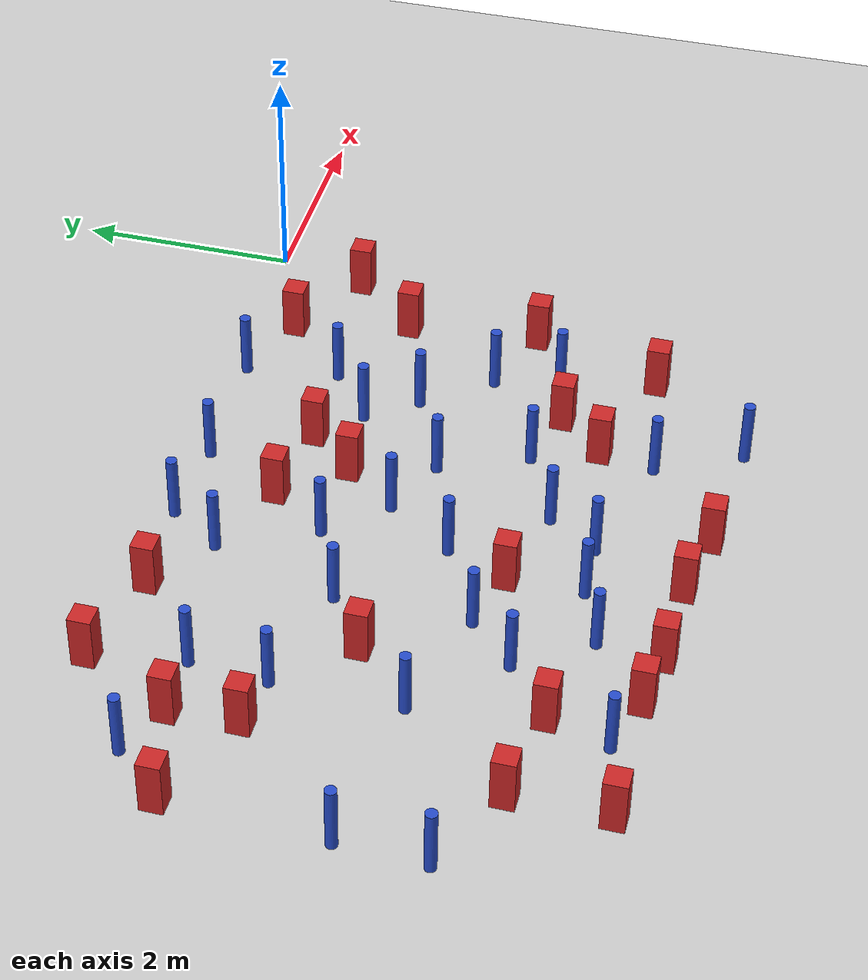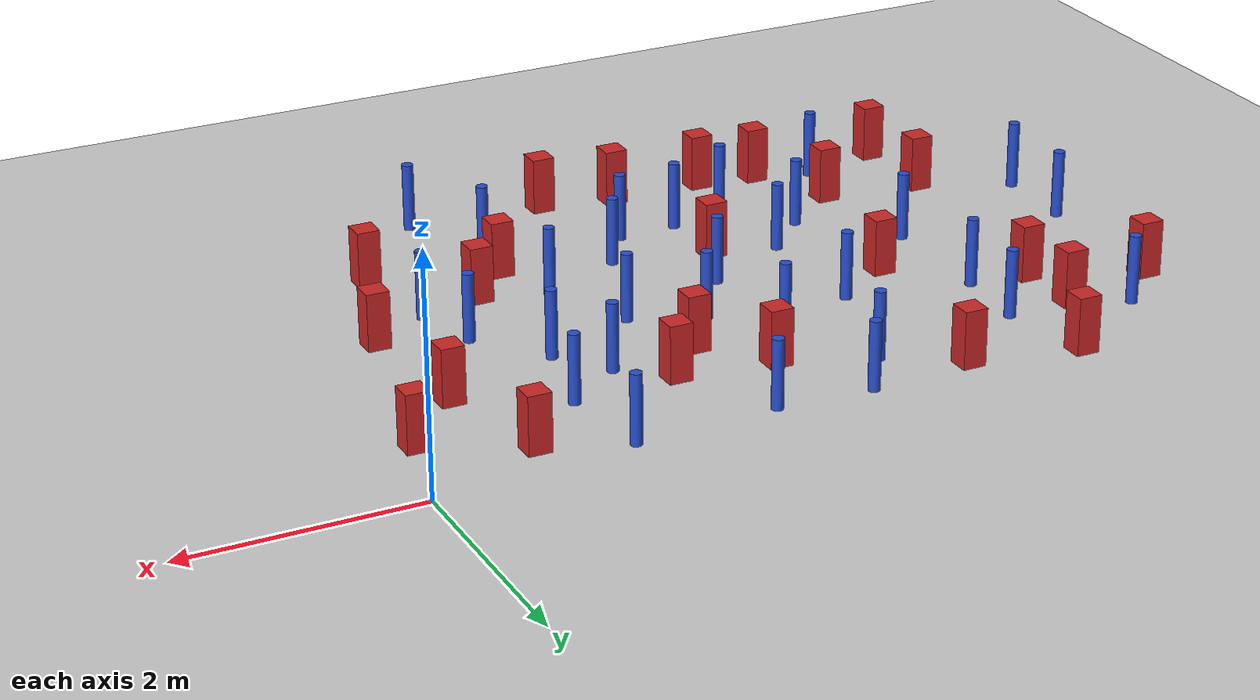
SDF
<sdf version="1.6">
 <world name="default">
  <model name="ground_plane">
   <static>1</static>
   <link name="link">
    <collision name="collision">
     <geometry><plane><normal>0 0 1</normal><size>100 100</size></plane></geometry>
     <surface><friction><ode><mu>100</mu><mu2>50</mu2></ode></friction></surface>
    </collision>
    <visual name="visual">
     <cast_shadows>0</cast_shadows>
     <geometry><plane><normal>0 0 1</normal><size>100 100</size></plane></geometry>
     <material>
      <ambient>1.0 1.0 1.0 1.0</ambient>
      <diffuse>0.8 0.8 0.8 1.0</diffuse>
      <specular>0.01 0.01 0.01 1.000000</specular>
     </material>
    </visual>
   </link>
  </model>
  <model name="pole_obstacle0">
   <static>true</static>
   <pose>-2.11053961955 -1.37780784894 7.38925637345e-09 -8.471706928e-08 1.24976765152e-08 -1.74513093012e-07</pose>
   <link name="link">
    <pose>0 0 0.3 0 -0 0</pose>
    <inertial>
     <mass>1</mass>
     <inertia><ixx>0.145833</ixx><ixy>0</ixy><ixz>0</ixz><iyy>0.145833</iyy><iyz>0</iyz><izz>0.125</izz></inertia>
    </inertial>
    <collision name="collision">
     <geometry><cylinder><radius>0.05</radius><length>.6</length></cylinder></geometry>
    </collision>
    <visual name="visual">
     <geometry><cylinder><radius>0.05</radius><length>.6</length></cylinder></geometry>
     <material>
      <script><name>Gazebo/Blue</name><uri>file://media/materials/scripts/gazebo.material</uri></script>
     </material>
    </visual>
   </link>
  </model>
  <model name="pole_obstacle1">
   <static>true</static>
   <pose>-3.68166964586 -1.43616901188 7.38925637345e-09 -8.471706928e-08 1.24976765152e-08 -1.74513093012e-07</pose>
   <link name="link">
    <pose>0 0 0.3 0 -0 0</pose>
    <inertial>
     <mass>1</mass>
     <inertia><ixx>0.145833</ixx><ixy>0</ixy><ixz>0</ixz><iyy>0.145833</iyy><iyz>0</iyz><izz>0.125</izz></inertia>
    </inertial>
    <collision name="collision">
     <geometry><cylinder><radius>0.05</radius><length>.6</length></cylinder></geometry>
    </collision>
    <visual name="visual">
     <geometry><cylinder><radius>0.05</radius><length>.6</length></cylinder></geometry>
     <material>
      <script><name>Gazebo/Blue</name><uri>file://media/materials/scripts/gazebo.material</uri></script>
     </material>
    </visual>
   </link>
  </model>
  <model name="square_post_obstacle18">
   <static>true</static>
   <pose>-1.00852679622 -3.84556758201 1.91545236811e-07 -7.35059704564e-06 1.12565212e-07 2.39332434364e-05</pose>
   <link name="link">
    <pose>0 0 0.25 0 -0 0</pose>
    <inertial>
     <mass>100</mass>
     <inertia>
      <ixx>0.166667</ixx>
      <ixy>0</ixy>
      <ixz>0</ixz>
      <iyy>0.166667</iyy>
      <iyz>0</iyz>
      <izz>0.166667</izz>
     </inertia>
    </inertial>
    <collision name="collision"><geometry><box><size>.2 .2 .5</size></box></geometry></collision>
    <visual name="visual">
     <geometry><box><size>.2 .2 .5</size></box></geometry>
     <material>
      <script><name>Gazebo/Red</name><uri>file://media/materials/scripts/gazebo.material</uri></script>
     </material>
    </visual>
   </link>
  </model>
  <model name="pole_obstacle25">
   <static>true</static>
   <pose>-2.28823103173 -2.95476217556 7.38925637345e-09 -8.47170692798e-08 1.24976764939e-08 -1.74513093025e-07</pose>
   <link name="link">
    <pose>0 0 0.3 0 -0 0</pose>
    <inertial>
     <mass>1</mass>
     <inertia><ixx>0.145833</ixx><ixy>0</ixy><ixz>0</ixz><iyy>0.145833</iyy><iyz>0</iyz><izz>0.125</izz></inertia>
    </inertial>
    <collision name="collision">
     <geometry><cylinder><radius>0.05</radius><length>.6</length></cylinder></geometry>
    </collision>
    <visual name="visual">
     <geometry><cylinder><radius>0.05</radius><length>.6</length></cylinder></geometry>
     <material>
      <script><name>Gazebo/Blue</name><uri>file://media/materials/scripts/gazebo.material</uri></script>
     </material>
    </visual>
   </link>
  </model>
  <model name="pole_obstacle26">
   <static>true</static>
   <pose>-3.63278469626 -2.53718502905 7.38925637345e-09 -8.471706928e-08 1.24976765098e-08 -1.74513093016e-07</pose>
   <link name="link">
    <pose>0 0 0.3 0 -0 0</pose>
    <inertial>
     <mass>1</mass>
     <inertia><ixx>0.145833</ixx><ixy>0</ixy><ixz>0</ixz><iyy>0.145833</iyy><iyz>0</iyz><izz>0.125</izz></inertia>
    </inertial>
    <collision name="collision">
     <geometry><cylinder><radius>0.05</radius><length>.6</length></cylinder></geometry>
    </collision>
    <visual name="visual">
     <geometry><cylinder><radius>0.05</radius><length>.6</length></cylinder></geometry>
     <material>
      <script><name>Gazebo/Blue</name><uri>file://media/materials/scripts/gazebo.material</uri></script>
     </material>
    </visual>
   </link>
  </model>
  <model name="pole_obstacle30">
   <static>true</static>
   <pose>-5.50101128781 -1.53188321472 7.38925637345e-09 -8.471706928e-08 1.24976765134e-08 -1.74513093015e-07</pose>
   <link name="link">
    <pose>0 0 0.3 0 -0 0</pose>
    <inertial>
     <mass>1</mass>
     <inertia><ixx>0.145833</ixx><ixy>0</ixy><ixz>0</ixz><iyy>0.145833</iyy><iyz>0</iyz><izz>0.125</izz></inertia>
    </inertial>
    <collision name="collision">
     <geometry><cylinder><radius>0.05</radius><length>.6</length></cylinder></geometry>
    </collision>
    <visual name="visual">
     <geometry><cylinder><radius>0.05</radius><length>.6</length></cylinder></geometry>
     <material>
      <script><name>Gazebo/Blue</name><uri>file://media/materials/scripts/gazebo.material</uri></script>
     </material>
    </visual>
   </link>
  </model>
  <model name="pole_obstacle33">
   <static>true</static>
   <pose>-4.43601689761 -1.76488149253 7.38925637345e-09 -8.471706928e-08 1.24976765134e-08 -1.74513093015e-07</pose>
   <link name="link">
    <pose>0 0 0.3 0 -0 0</pose>
    <inertial>
     <mass>1</mass>
     <inertia><ixx>0.145833</ixx><ixy>0</ixy><ixz>0</ixz><iyy>0.145833</iyy><iyz>0</iyz><izz>0.125</izz></inertia>
    </inertial>
    <collision name="collision">
     <geometry><cylinder><radius>0.05</radius><length>.6</length></cylinder></geometry>
    </collision>
    <visual name="visual">
     <geometry><cylinder><radius>0.05</radius><length>.6</length></cylinder></geometry>
     <material>
      <script><name>Gazebo/Blue</name><uri>file://media/materials/scripts/gazebo.material</uri></script>
     </material>
    </visual>
   </link>
  </model>
  <model name="pole_obstacle35">
   <static>true</static>
   <pose>-1.6002046586 -0.995579997424 7.38925637345e-09 -8.47170692798e-08 1.24976765028e-08 -1.74513093019e-07</pose>
   <link name="link">
    <pose>0 0 0.3 0 -0 0</pose>
    <inertial>
     <mass>1</mass>
     <inertia><ixx>0.145833</ixx><ixy>0</ixy><ixz>0</ixz><iyy>0.145833</iyy><iyz>0</iyz><izz>0.125</izz></inertia>
    </inertial>
    <collision name="collision">
     <geometry><cylinder><radius>0.05</radius><length>.6</length></cylinder></geometry>
    </collision>
    <visual name="visual">
     <geometry><cylinder><radius>0.05</radius><length>.6</length></cylinder></geometry>
     <material>
      <script><name>Gazebo/Blue</name><uri>file://media/materials/scripts/gazebo.material</uri></script>
     </material>
    </visual>
   </link>
  </model>
  <model name="square_post_obstacle36">
   <static>true</static>
   <pose>-5.33904964948 -3.74923108384 1.91545236811e-07 -7.35059704564e-06 1.12565212e-07 2.39332434364e-05</pose>
   <link name="link">
    <pose>0 0 0.25 0 -0 0</pose>
    <inertial>
     <mass>100</mass>
     <inertia>
      <ixx>0.166667</ixx>
      <ixy>0</ixy>
      <ixz>0</ixz>
      <iyy>0.166667</iyy>
      <iyz>0</iyz>
      <izz>0.166667</izz>
     </inertia>
    </inertial>
    <collision name="collision"><geometry><box><size>.2 .2 .5</size></box></geometry></collision>
    <visual name="visual">
     <geometry><box><size>.2 .2 .5</size></box></geometry>
     <material>
      <script><name>Gazebo/Red</name><uri>file://media/materials/scripts/gazebo.material</uri></script>
     </material>
    </visual>
   </link>
  </model>
  <model name="pole_obstacle52">
   <static>true</static>
   <pose>-3.84491228498 -3.75736233636 7.38925637345e-09 -8.471706928e-08 1.24976765098e-08 -1.74513093016e-07</pose>
   <link name="link">
    <pose>0 0 0.3 0 -0 0</pose>
    <inertial>
     <mass>1</mass>
     <inertia><ixx>0.145833</ixx><ixy>0</ixy><ixz>0</ixz><iyy>0.145833</iyy><iyz>0</iyz><izz>0.125</izz></inertia>
    </inertial>
    <collision name="collision">
     <geometry><cylinder><radius>0.05</radius><length>.6</length></cylinder></geometry>
    </collision>
    <visual name="visual">
     <geometry><cylinder><radius>0.05</radius><length>.6</length></cylinder></geometry>
     <material>
      <script><name>Gazebo/Blue</name><uri>file://media/materials/scripts/gazebo.material</uri></script>
     </material>
    </visual>
   </link>
  </model>
  <model name="square_post_obstacle42">
   <static>true</static>
   <pose>-2.97548360658 -4.66591913306 1.91545236811e-07 -7.35059704564e-06 1.12565212e-07 2.39332434364e-05</pose>
   <link name="link">
    <pose>0 0 0.25 0 -0 0</pose>
    <inertial>
     <mass>100</mass>
     <inertia>
      <ixx>0.166667</ixx>
      <ixy>0</ixy>
      <ixz>0</ixz>
      <iyy>0.166667</iyy>
      <iyz>0</iyz>
      <izz>0.166667</izz>
     </inertia>
    </inertial>
    <collision name="collision"><geometry><box><size>.2 .2 .5</size></box></geometry></collision>
    <visual name="visual">
     <geometry><box><size>.2 .2 .5</size></box></geometry>
     <material>
      <script><name>Gazebo/Red</name><uri>file://media/materials/scripts/gazebo.material</uri></script>
     </material>
    </visual>
   </link>
  </model>
  <model name="pole_obstacle56">
   <static>true</static>
   <pose>-6.5002849731 -0.632161843018 7.38925637345e-09 -8.47170692799e-08 1.24976765038e-08 -1.74513093018e-07</pose>
   <link name="link">
    <pose>0 0 0.3 0 -0 0</pose>
    <inertial>
     <mass>1</mass>
     <inertia><ixx>0.145833</ixx><ixy>0</ixy><ixz>0</ixz><iyy>0.145833</iyy><iyz>0</iyz><izz>0.125</izz></inertia>
    </inertial>
    <collision name="collision">
     <geometry><cylinder><radius>0.05</radius><length>.6</length></cylinder></geometry>
    </collision>
    <visual name="visual">
     <geometry><cylinder><radius>0.05</radius><length>.6</length></cylinder></geometry>
     <material>
      <script><name>Gazebo/Blue</name><uri>file://media/materials/scripts/gazebo.material</uri></script>
     </material>
    </visual>
   </link>
  </model>
  <model name="pole_obstacle62">
   <static>true</static>
   <pose>-4.08606550317 -0.620463452825 7.38925637345e-09 -8.47170692799e-08 1.24976765038e-08 -1.74513093018e-07</pose>
   <link name="link">
    <pose>0 0 0.3 0 -0 0</pose>
    <inertial>
     <mass>1</mass>
     <inertia><ixx>0.145833</ixx><ixy>0</ixy><ixz>0</ixz><iyy>0.145833</iyy><iyz>0</iyz><izz>0.125</izz></inertia>
    </inertial>
    <collision name="collision">
     <geometry><cylinder><radius>0.05</radius><length>.6</length></cylinder></geometry>
    </collision>
    <visual name="visual">
     <geometry><cylinder><radius>0.05</radius><length>.6</length></cylinder></geometry>
     <material>
      <script><name>Gazebo/Blue</name><uri>file://media/materials/scripts/gazebo.material</uri></script>
     </material>
    </visual>
   </link>
  </model>
  <model name="square_post_obstacle54">
   <static>true</static>
   <pose>-3.62690415859 -4.54605625471 1.91545236811e-07 -7.35059704564e-06 1.12565212e-07 2.39332434364e-05</pose>
   <link name="link">
    <pose>0 0 0.25 0 -0 0</pose>
    <inertial>
     <mass>100</mass>
     <inertia>
      <ixx>0.166667</ixx>
      <ixy>0</ixy>
      <ixz>0</ixz>
      <iyy>0.166667</iyy>
      <iyz>0</iyz>
      <izz>0.166667</izz>
     </inertia>
    </inertial>
    <collision name="collision"><geometry><box><size>.2 .2 .5</size></box></geometry></collision>
    <visual name="visual">
     <geometry><box><size>.2 .2 .5</size></box></geometry>
     <material>
      <script><name>Gazebo/Red</name><uri>file://media/materials/scripts/gazebo.material</uri></script>
     </material>
    </visual>
   </link>
  </model>
  <model name="square_post_obstacle56">
   <static>true</static>
   <pose>-2.49520550602 -1.03942213132 1.91545236811e-07 -7.35059704564e-06 1.12565212e-07 2.39332434364e-05</pose>
   <link name="link">
    <pose>0 0 0.25 0 -0 0</pose>
    <inertial>
     <mass>100</mass>
     <inertia>
      <ixx>0.166667</ixx>
      <ixy>0</ixy>
      <ixz>0</ixz>
      <iyy>0.166667</iyy>
      <iyz>0</iyz>
      <izz>0.166667</izz>
     </inertia>
    </inertial>
    <collision name="collision"><geometry><box><size>.2 .2 .5</size></box></geometry></collision>
    <visual name="visual">
     <geometry><box><size>.2 .2 .5</size></box></geometry>
     <material>
      <script><name>Gazebo/Red</name><uri>file://media/materials/scripts/gazebo.material</uri></script>
     </material>
    </visual>
   </link>
  </model>
  <model name="pole_obstacle76">
   <static>true</static>
   <pose>-2.15423952019 -4.02640002445 7.38925637345e-09 -8.47170692799e-08 1.24976764995e-08 -1.74513093021e-07</pose>
   <link name="link">
    <pose>0 0 0.3 0 -0 0</pose>
    <inertial>
     <mass>1</mass>
     <inertia><ixx>0.145833</ixx><ixy>0</ixy><ixz>0</ixz><iyy>0.145833</iyy><iyz>0</iyz><izz>0.125</izz></inertia>
    </inertial>
    <collision name="collision">
     <geometry><cylinder><radius>0.05</radius><length>.6</length></cylinder></geometry>
    </collision>
    <visual name="visual">
     <geometry><cylinder><radius>0.05</radius><length>.6</length></cylinder></geometry>
     <material>
      <script><name>Gazebo/Blue</name><uri>file://media/materials/scripts/gazebo.material</uri></script>
     </material>
    </visual>
   </link>
  </model>
  <model name="square_post_obstacle66">
   <static>true</static>
   <pose>-1.00684016252 -0.417327412222 1.91545236811e-07 -7.35059704564e-06 1.12565212e-07 2.39332434364e-05</pose>
   <link name="link">
    <pose>0 0 0.25 0 -0 0</pose>
    <inertial>
     <mass>100</mass>
     <inertia>
      <ixx>0.166667</ixx>
      <ixy>0</ixy>
      <ixz>0</ixz>
      <iyy>0.166667</iyy>
      <iyz>0</iyz>
      <izz>0.166667</izz>
     </inertia>
    </inertial>
    <collision name="collision"><geometry><box><size>.2 .2 .5</size></box></geometry></collision>
    <visual name="visual">
     <geometry><box><size>.2 .2 .5</size></box></geometry>
     <material>
      <script><name>Gazebo/Red</name><uri>file://media/materials/scripts/gazebo.material</uri></script>
     </material>
    </visual>
   </link>
  </model>
  <model name="pole_obstacle80">
   <static>true</static>
   <pose>-1.15797878664 -2.97850581812 7.38925637345e-09 -8.47170692799e-08 1.24976765053e-08 -1.74513093017e-07</pose>
   <link name="link">
    <pose>0 0 0.3 0 -0 0</pose>
    <inertial>
     <mass>1</mass>
     <inertia><ixx>0.145833</ixx><ixy>0</ixy><ixz>0</ixz><iyy>0.145833</iyy><iyz>0</iyz><izz>0.125</izz></inertia>
    </inertial>
    <collision name="collision">
     <geometry><cylinder><radius>0.05</radius><length>.6</length></cylinder></geometry>
    </collision>
    <visual name="visual">
     <geometry><cylinder><radius>0.05</radius><length>.6</length></cylinder></geometry>
     <material>
      <script><name>Gazebo/Blue</name><uri>file://media/materials/scripts/gazebo.material</uri></script>
     </material>
    </visual>
   </link>
  </model>
  <model name="square_post_obstacle71">
   <static>true</static>
   <pose>-3.86694732276 -3.09197322422 1.91545236811e-07 -7.35059704564e-06 1.12565212e-07 2.39332434364e-05</pose>
   <link name="link">
    <pose>0 0 0.25 0 -0 0</pose>
    <inertial>
     <mass>100</mass>
     <inertia>
      <ixx>0.166667</ixx>
      <ixy>0</ixy>
      <ixz>0</ixz>
      <iyy>0.166667</iyy>
      <iyz>0</iyz>
      <izz>0.166667</izz>
     </inertia>
    </inertial>
    <collision name="collision"><geometry><box><size>.2 .2 .5</size></box></geometry></collision>
    <visual name="visual">
     <geometry><box><size>.2 .2 .5</size></box></geometry>
     <material>
      <script><name>Gazebo/Red</name><uri>file://media/materials/scripts/gazebo.material</uri></script>
     </material>
    </visual>
   </link>
  </model>
  <model name="square_post_obstacle81">
   <static>true</static>
   <pose>-4.67785933307 -0.232144339004 1.91545236811e-07 -7.35059704564e-06 1.12565212e-07 2.39332434364e-05</pose>
   <link name="link">
    <pose>0 0 0.25 0 -0 0</pose>
    <inertial>
     <mass>100</mass>
     <inertia>
      <ixx>0.166667</ixx>
      <ixy>0</ixy>
      <ixz>0</ixz>
      <iyy>0.166667</iyy>
      <iyz>0</iyz>
      <izz>0.166667</izz>
     </inertia>
    </inertial>
    <collision name="collision"><geometry><box><size>.2 .2 .5</size></box></geometry></collision>
    <visual name="visual">
     <geometry><box><size>.2 .2 .5</size></box></geometry>
     <material>
      <script><name>Gazebo/Red</name><uri>file://media/materials/scripts/gazebo.material</uri></script>
     </material>
    </visual>
   </link>
  </model>
  <model name="pole_obstacle92">
   <static>true</static>
   <pose>-5.4841820577 -4.2934463244 7.38925637345e-09 -8.47170692796e-08 1.24976764786e-08 -1.74513093032e-07</pose>
   <link name="link">
    <pose>0 0 0.3 0 -0 0</pose>
    <inertial>
     <mass>1</mass>
     <inertia><ixx>0.145833</ixx><ixy>0</ixy><ixz>0</ixz><iyy>0.145833</iyy><iyz>0</iyz><izz>0.125</izz></inertia>
    </inertial>
    <collision name="collision">
     <geometry><cylinder><radius>0.05</radius><length>.6</length></cylinder></geometry>
    </collision>
    <visual name="visual">
     <geometry><cylinder><radius>0.05</radius><length>.6</length></cylinder></geometry>
     <material>
      <script><name>Gazebo/Blue</name><uri>file://media/materials/scripts/gazebo.material</uri></script>
     </material>
    </visual>
   </link>
  </model>
  <model name="pole_obstacle97">
   <static>true</static>
   <pose>-5.45050507622 -0.842119013594 7.38925637345e-09 -8.47170692799e-08 1.24976765038e-08 -1.74513093018e-07</pose>
   <link name="link">
    <pose>0 0 0.3 0 -0 0</pose>
    <inertial>
     <mass>1</mass>
     <inertia><ixx>0.145833</ixx><ixy>0</ixy><ixz>0</ixz><iyy>0.145833</iyy><iyz>0</iyz><izz>0.125</izz></inertia>
    </inertial>
    <collision name="collision">
     <geometry><cylinder><radius>0.05</radius><length>.6</length></cylinder></geometry>
    </collision>
    <visual name="visual">
     <geometry><cylinder><radius>0.05</radius><length>.6</length></cylinder></geometry>
     <material>
      <script><name>Gazebo/Blue</name><uri>file://media/materials/scripts/gazebo.material</uri></script>
     </material>
    </visual>
   </link>
  </model>
  <model name="pole_obstacle106">
   <static>true</static>
   <pose>-1.71794696783 -0.15498616252 7.38925637345e-09 -8.47170692798e-08 1.24976765004e-08 -1.7451309302e-07</pose>
   <link name="link">
    <pose>0 0 0.3 0 -0 0</pose>
    <inertial>
     <mass>1</mass>
     <inertia><ixx>0.145833</ixx><ixy>0</ixy><ixz>0</ixz><iyy>0.145833</iyy><iyz>0</iyz><izz>0.125</izz></inertia>
    </inertial>
    <collision name="collision">
     <geometry><cylinder><radius>0.05</radius><length>.6</length></cylinder></geometry>
    </collision>
    <visual name="visual">
     <geometry><cylinder><radius>0.05</radius><length>.6</length></cylinder></geometry>
     <material>
      <script><name>Gazebo/Blue</name><uri>file://media/materials/scripts/gazebo.material</uri></script>
     </material>
    </visual>
   </link>
  </model>
  <model name="pole_obstacle108">
   <static>true</static>
   <pose>-2.62600037578 -2.18582881467 7.38925637345e-09 -8.47170692798e-08 1.24976764939e-08 -1.74513093025e-07</pose>
   <link name="link">
    <pose>0 0 0.3 0 -0 0</pose>
    <inertial>
     <mass>1</mass>
     <inertia><ixx>0.145833</ixx><ixy>0</ixy><ixz>0</ixz><iyy>0.145833</iyy><iyz>0</iyz><izz>0.125</izz></inertia>
    </inertial>
    <collision name="collision">
     <geometry><cylinder><radius>0.05</radius><length>.6</length></cylinder></geometry>
    </collision>
    <visual name="visual">
     <geometry><cylinder><radius>0.05</radius><length>.6</length></cylinder></geometry>
     <material>
      <script><name>Gazebo/Blue</name><uri>file://media/materials/scripts/gazebo.material</uri></script>
     </material>
    </visual>
   </link>
  </model>
  <model name="pole_obstacle111">
   <static>true</static>
   <pose>-3.77314456529 -0.154249066935 7.38925637345e-09 -8.47170692796e-08 1.24976764749e-08 -1.74513093036e-07</pose>
   <link name="link">
    <pose>0 0 0.3 0 -0 0</pose>
    <inertial>
     <mass>1</mass>
     <inertia><ixx>0.145833</ixx><ixy>0</ixy><ixz>0</ixz><iyy>0.145833</iyy><iyz>0</iyz><izz>0.125</izz></inertia>
    </inertial>
    <collision name="collision">
     <geometry><cylinder><radius>0.05</radius><length>.6</length></cylinder></geometry>
    </collision>
    <visual name="visual">
     <geometry><cylinder><radius>0.05</radius><length>.6</length></cylinder></geometry>
     <material>
      <script><name>Gazebo/Blue</name><uri>file://media/materials/scripts/gazebo.material</uri></script>
     </material>
    </visual>
   </link>
  </model>
  <model name="square_post_obstacle106">
   <static>true</static>
   <pose>-1.71234145182 -3.1191087139 1.91545236811e-07 -7.35059704564e-06 1.12565212e-07 2.39332434364e-05</pose>
   <link name="link">
    <pose>0 0 0.25 0 -0 0</pose>
    <inertial>
     <mass>100</mass>
     <inertia>
      <ixx>0.166667</ixx>
      <ixy>0</ixy>
      <ixz>0</ixz>
      <iyy>0.166667</iyy>
      <iyz>0</iyz>
      <izz>0.166667</izz>
     </inertia>
    </inertial>
    <collision name="collision"><geometry><box><size>.2 .2 .5</size></box></geometry></collision>
    <visual name="visual">
     <geometry><box><size>.2 .2 .5</size></box></geometry>
     <material>
      <script><name>Gazebo/Red</name><uri>file://media/materials/scripts/gazebo.material</uri></script>
     </material>
    </visual>
   </link>
  </model>
  <model name="pole_obstacle117">
   <static>true</static>
   <pose>-1.32559839592 -2.40347467494 7.38925637345e-09 -8.47170692799e-08 1.24976765053e-08 -1.74513093017e-07</pose>
   <link name="link">
    <pose>0 0 0.3 0 -0 0</pose>
    <inertial>
     <mass>1</mass>
     <inertia><ixx>0.145833</ixx><ixy>0</ixy><ixz>0</ixz><iyy>0.145833</iyy><iyz>0</iyz><izz>0.125</izz></inertia>
    </inertial>
    <collision name="collision">
     <geometry><cylinder><radius>0.05</radius><length>.6</length></cylinder></geometry>
    </collision>
    <visual name="visual">
     <geometry><cylinder><radius>0.05</radius><length>.6</length></cylinder></geometry>
     <material>
      <script><name>Gazebo/Blue</name><uri>file://media/materials/scripts/gazebo.material</uri></script>
     </material>
    </visual>
   </link>
  </model>
  <model name="pole_obstacle128">
   <static>true</static>
   <pose>-4.824840383 -3.34736539419 7.38925637345e-09 -8.47170692798e-08 1.24976764937e-08 -1.74513093023e-07</pose>
   <link name="link">
    <pose>0 0 0.3 0 -0 0</pose>
    <inertial>
     <mass>1</mass>
     <inertia><ixx>0.145833</ixx><ixy>0</ixy><ixz>0</ixz><iyy>0.145833</iyy><iyz>0</iyz><izz>0.125</izz></inertia>
    </inertial>
    <collision name="collision">
     <geometry><cylinder><radius>0.05</radius><length>.6</length></cylinder></geometry>
    </collision>
    <visual name="visual">
     <geometry><cylinder><radius>0.05</radius><length>.6</length></cylinder></geometry>
     <material>
      <script><name>Gazebo/Blue</name><uri>file://media/materials/scripts/gazebo.material</uri></script>
     </material>
    </visual>
   </link>
  </model>
  <model name="square_post_obstacle125">
   <static>true</static>
   <pose>-6.20282360197 -3.61799152098 1.91545236811e-07 -7.35059704564e-06 1.12565212e-07 2.39332434364e-05</pose>
   <link name="link">
    <pose>0 0 0.25 0 -0 0</pose>
    <inertial>
     <mass>100</mass>
     <inertia>
      <ixx>0.166667</ixx>
      <ixy>0</ixy>
      <ixz>0</ixz>
      <iyy>0.166667</iyy>
      <iyz>0</iyz>
      <izz>0.166667</izz>
     </inertia>
    </inertial>
    <collision name="collision"><geometry><box><size>.2 .2 .5</size></box></geometry></collision>
    <visual name="visual">
     <geometry><box><size>.2 .2 .5</size></box></geometry>
     <material>
      <script><name>Gazebo/Red</name><uri>file://media/materials/scripts/gazebo.material</uri></script>
     </material>
    </visual>
   </link>
  </model>
  <model name="pole_obstacle131">
   <static>true</static>
   <pose>-3.02637080306 -3.28890909358 7.38925637345e-09 -8.471706928e-08 1.24976765098e-08 -1.74513093016e-07</pose>
   <link name="link">
    <pose>0 0 0.3 0 -0 0</pose>
    <inertial>
     <mass>1</mass>
     <inertia><ixx>0.145833</ixx><ixy>0</ixy><ixz>0</ixz><iyy>0.145833</iyy><iyz>0</iyz><izz>0.125</izz></inertia>
    </inertial>
    <collision name="collision">
     <geometry><cylinder><radius>0.05</radius><length>.6</length></cylinder></geometry>
    </collision>
    <visual name="visual">
     <geometry><cylinder><radius>0.05</radius><length>.6</length></cylinder></geometry>
     <material>
      <script><name>Gazebo/Blue</name><uri>file://media/materials/scripts/gazebo.material</uri></script>
     </material>
    </visual>
   </link>
  </model>
  <model name="square_post_obstacle132">
   <static>true</static>
   <pose>-6.19363453972 -4.46014602046 1.91545236811e-07 -7.35059704564e-06 1.12565212e-07 2.39332434364e-05</pose>
   <link name="link">
    <pose>0 0 0.25 0 -0 0</pose>
    <inertial>
     <mass>100</mass>
     <inertia>
      <ixx>0.166667</ixx>
      <ixy>0</ixy>
      <ixz>0</ixz>
      <iyy>0.166667</iyy>
      <iyz>0</iyz>
      <izz>0.166667</izz>
     </inertia>
    </inertial>
    <collision name="collision"><geometry><box><size>.2 .2 .5</size></box></geometry></collision>
    <visual name="visual">
     <geometry><box><size>.2 .2 .5</size></box></geometry>
     <material>
      <script><name>Gazebo/Red</name><uri>file://media/materials/scripts/gazebo.material</uri></script>
     </material>
    </visual>
   </link>
  </model>
  <model name="square_post_obstacle134">
   <static>true</static>
   <pose>-5.61614496614 -0.0404187504699 1.91545236811e-07 -7.35059704564e-06 1.12565212e-07 2.39332434364e-05</pose>
   <link name="link">
    <pose>0 0 0.25 0 -0 0</pose>
    <inertial>
     <mass>100</mass>
     <inertia>
      <ixx>0.166667</ixx>
      <ixy>0</ixy>
      <ixz>0</ixz>
      <iyy>0.166667</iyy>
      <iyz>0</iyz>
      <izz>0.166667</izz>
     </inertia>
    </inertial>
    <collision name="collision"><geometry><box><size>.2 .2 .5</size></box></geometry></collision>
    <visual name="visual">
     <geometry><box><size>.2 .2 .5</size></box></geometry>
     <material>
      <script><name>Gazebo/Red</name><uri>file://media/materials/scripts/gazebo.material</uri></script>
     </material>
    </visual>
   </link>
  </model>
  <model name="square_post_obstacle138">
   <static>true</static>
   <pose>-4.46312342166 -4.52532098726 1.91545236811e-07 -7.35059704564e-06 1.12565212e-07 2.39332434364e-05</pose>
   <link name="link">
    <pose>0 0 0.25 0 -0 0</pose>
    <inertial>
     <mass>100</mass>
     <inertia>
      <ixx>0.166667</ixx>
      <ixy>0</ixy>
      <ixz>0</ixz>
      <iyy>0.166667</iyy>
      <iyz>0</iyz>
      <izz>0.166667</izz>
     </inertia>
    </inertial>
    <collision name="collision"><geometry><box><size>.2 .2 .5</size></box></geometry></collision>
    <visual name="visual">
     <geometry><box><size>.2 .2 .5</size></box></geometry>
     <material>
      <script><name>Gazebo/Red</name><uri>file://media/materials/scripts/gazebo.material</uri></script>
     </material>
    </visual>
   </link>
  </model>
  <model name="pole_obstacle142">
   <static>true</static>
   <pose>-5.49518551453 -2.65340799123 7.38925637345e-09 -8.47170692798e-08 1.24976764937e-08 -1.74513093023e-07</pose>
   <link name="link">
    <pose>0 0 0.3 0 -0 0</pose>
    <inertial>
     <mass>1</mass>
     <inertia><ixx>0.145833</ixx><ixy>0</ixy><ixz>0</ixz><iyy>0.145833</iyy><iyz>0</iyz><izz>0.125</izz></inertia>
    </inertial>
    <collision name="collision">
     <geometry><cylinder><radius>0.05</radius><length>.6</length></cylinder></geometry>
    </collision>
    <visual name="visual">
     <geometry><cylinder><radius>0.05</radius><length>.6</length></cylinder></geometry>
     <material>
      <script><name>Gazebo/Blue</name><uri>file://media/materials/scripts/gazebo.material</uri></script>
     </material>
    </visual>
   </link>
  </model>
  <model name="pole_obstacle151">
   <static>true</static>
   <pose>-4.42094023551 -2.9394055383 7.38925637345e-09 -8.47170692798e-08 1.24976764937e-08 -1.74513093023e-07</pose>
   <link name="link">
    <pose>0 0 0.3 0 -0 0</pose>
    <inertial>
     <mass>1</mass>
     <inertia><ixx>0.145833</ixx><ixy>0</ixy><ixz>0</ixz><iyy>0.145833</iyy><iyz>0</iyz><izz>0.125</izz></inertia>
    </inertial>
    <collision name="collision">
     <geometry><cylinder><radius>0.05</radius><length>.6</length></cylinder></geometry>
    </collision>
    <visual name="visual">
     <geometry><cylinder><radius>0.05</radius><length>.6</length></cylinder></geometry>
     <material>
      <script><name>Gazebo/Blue</name><uri>file://media/materials/scripts/gazebo.material</uri></script>
     </material>
    </visual>
   </link>
  </model>
  <model name="square_post_obstacle149">
   <static>true</static>
   <pose>-0.6194800498 -2.65999449244 1.91545236811e-07 -7.35059704564e-06 1.12565212e-07 2.39332434364e-05</pose>
   <link name="link">
    <pose>0 0 0.25 0 -0 0</pose>
    <inertial>
     <mass>100</mass>
     <inertia>
      <ixx>0.166667</ixx>
      <ixy>0</ixy>
      <ixz>0</ixz>
      <iyy>0.166667</iyy>
      <iyz>0</iyz>
      <izz>0.166667</izz>
     </inertia>
    </inertial>
    <collision name="collision"><geometry><box><size>.2 .2 .5</size></box></geometry></collision>
    <visual name="visual">
     <geometry><box><size>.2 .2 .5</size></box></geometry>
     <material>
      <script><name>Gazebo/Red</name><uri>file://media/materials/scripts/gazebo.material</uri></script>
     </material>
    </visual>
   </link>
  </model>
  <model name="pole_obstacle155">
   <static>true</static>
   <pose>-6.96523137212 -2.4760151186 7.38925637345e-09 -8.47170692798e-08 1.24976764937e-08 -1.74513093023e-07</pose>
   <link name="link">
    <pose>0 0 0.3 0 -0 0</pose>
    <inertial>
     <mass>1</mass>
     <inertia><ixx>0.145833</ixx><ixy>0</ixy><ixz>0</ixz><iyy>0.145833</iyy><iyz>0</iyz><izz>0.125</izz></inertia>
    </inertial>
    <collision name="collision">
     <geometry><cylinder><radius>0.05</radius><length>.6</length></cylinder></geometry>
    </collision>
    <visual name="visual">
     <geometry><cylinder><radius>0.05</radius><length>.6</length></cylinder></geometry>
     <material>
      <script><name>Gazebo/Blue</name><uri>file://media/materials/scripts/gazebo.material</uri></script>
     </material>
    </visual>
   </link>
  </model>
  <model name="square_post_obstacle158">
   <static>true</static>
   <pose>-2.0797703074 -3.52780866055 1.91545236811e-07 -7.35059704564e-06 1.12565212e-07 2.39332434364e-05</pose>
   <link name="link">
    <pose>0 0 0.25 0 -0 0</pose>
    <inertial>
     <mass>100</mass>
     <inertia>
      <ixx>0.166667</ixx>
      <ixy>0</ixy>
      <ixz>0</ixz>
      <iyy>0.166667</iyy>
      <iyz>0</iyz>
      <izz>0.166667</izz>
     </inertia>
    </inertial>
    <collision name="collision"><geometry><box><size>.2 .2 .5</size></box></geometry></collision>
    <visual name="visual">
     <geometry><box><size>.2 .2 .5</size></box></geometry>
     <material>
      <script><name>Gazebo/Red</name><uri>file://media/materials/scripts/gazebo.material</uri></script>
     </material>
    </visual>
   </link>
  </model>
  <model name="square_post_obstacle159">
   <static>true</static>
   <pose>-3.32798158285 -0.928116056679 1.91545236811e-07 -7.35059704564e-06 1.12565212e-07 2.39332434364e-05</pose>
   <link name="link">
    <pose>0 0 0.25 0 -0 0</pose>
    <inertial>
     <mass>100</mass>
     <inertia>
      <ixx>0.166667</ixx>
      <ixy>0</ixy>
      <ixz>0</ixz>
      <iyy>0.166667</iyy>
      <iyz>0</iyz>
      <izz>0.166667</izz>
     </inertia>
    </inertial>
    <collision name="collision"><geometry><box><size>.2 .2 .5</size></box></geometry></collision>
    <visual name="visual">
     <geometry><box><size>.2 .2 .5</size></box></geometry>
     <material>
      <script><name>Gazebo/Red</name><uri>file://media/materials/scripts/gazebo.material</uri></script>
     </material>
    </visual>
   </link>
  </model>
  <model name="square_post_obstacle172">
   <static>true</static>
   <pose>-6.03288671754 -0.857106740878 1.91545236811e-07 -7.35059704564e-06 1.12565212e-07 2.39332434364e-05</pose>
   <link name="link">
    <pose>0 0 0.25 0 -0 0</pose>
    <inertial>
     <mass>100</mass>
     <inertia>
      <ixx>0.166667</ixx>
      <ixy>0</ixy>
      <ixz>0</ixz>
      <iyy>0.166667</iyy>
      <iyz>0</iyz>
      <izz>0.166667</izz>
     </inertia>
    </inertial>
    <collision name="collision"><geometry><box><size>.2 .2 .5</size></box></geometry></collision>
    <visual name="visual">
     <geometry><box><size>.2 .2 .5</size></box></geometry>
     <material>
      <script><name>Gazebo/Red</name><uri>file://media/materials/scripts/gazebo.material</uri></script>
     </material>
    </visual>
   </link>
  </model>
  <model name="square_post_obstacle177">
   <static>true</static>
   <pose>-4.9675206319 -2.13185870311 1.91545236811e-07 -7.35059704564e-06 1.12565212e-07 2.39332434364e-05</pose>
   <link name="link">
    <pose>0 0 0.25 0 -0 0</pose>
    <inertial>
     <mass>100</mass>
     <inertia>
      <ixx>0.166667</ixx>
      <ixy>0</ixy>
      <ixz>0</ixz>
      <iyy>0.166667</iyy>
      <iyz>0</iyz>
      <izz>0.166667</izz>
     </inertia>
    </inertial>
    <collision name="collision"><geometry><box><size>.2 .2 .5</size></box></geometry></collision>
    <visual name="visual">
     <geometry><box><size>.2 .2 .5</size></box></geometry>
     <material>
      <script><name>Gazebo/Red</name><uri>file://media/materials/scripts/gazebo.material</uri></script>
     </material>
    </visual>
   </link>
  </model>
  <model name="square_post_obstacle178">
   <static>true</static>
   <pose>-0.21205147228 -0.847319327351 1.91545236811e-07 -7.35059704564e-06 1.12565212e-07 2.39332434364e-05</pose>
   <link name="link">
    <pose>0 0 0.25 0 -0 0</pose>
    <inertial>
     <mass>100</mass>
     <inertia>
      <ixx>0.166667</ixx>
      <ixy>0</ixy>
      <ixz>0</ixz>
      <iyy>0.166667</iyy>
      <iyz>0</iyz>
      <izz>0.166667</izz>
     </inertia>
    </inertial>
    <collision name="collision"><geometry><box><size>.2 .2 .5</size></box></geometry></collision>
    <visual name="visual">
     <geometry><box><size>.2 .2 .5</size></box></geometry>
     <material>
      <script><name>Gazebo/Red</name><uri>file://media/materials/scripts/gazebo.material</uri></script>
     </material>
    </visual>
   </link>
  </model>
  <model name="square_post_obstacle182">
   <static>true</static>
   <pose>-5.99883867223 -1.46364264451 1.91545236811e-07 -7.35059704564e-06 1.12565212e-07 2.39332434364e-05</pose>
   <link name="link">
    <pose>0 0 0.25 0 -0 0</pose>
    <inertial>
     <mass>100</mass>
     <inertia>
      <ixx>0.166667</ixx>
      <ixy>0</ixy>
      <ixz>0</ixz>
      <iyy>0.166667</iyy>
      <iyz>0</iyz>
      <izz>0.166667</izz>
     </inertia>
    </inertial>
    <collision name="collision"><geometry><box><size>.2 .2 .5</size></box></geometry></collision>
    <visual name="visual">
     <geometry><box><size>.2 .2 .5</size></box></geometry>
     <material>
      <script><name>Gazebo/Red</name><uri>file://media/materials/scripts/gazebo.material</uri></script>
     </material>
    </visual>
   </link>
  </model>
  <model name="pole_obstacle185">
   <static>true</static>
   <pose>-4.39606236096 -3.96253301263 7.38925637345e-09 -8.47170692799e-08 1.24976764984e-08 -1.7451309302e-07</pose>
   <link name="link">
    <pose>0 0 0.3 0 -0 0</pose>
    <inertial>
     <mass>1</mass>
     <inertia><ixx>0.145833</ixx><ixy>0</ixy><ixz>0</ixz><iyy>0.145833</iyy><iyz>0</iyz><izz>0.125</izz></inertia>
    </inertial>
    <collision name="collision">
     <geometry><cylinder><radius>0.05</radius><length>.6</length></cylinder></geometry>
    </collision>
    <visual name="visual">
     <geometry><cylinder><radius>0.05</radius><length>.6</length></cylinder></geometry>
     <material>
      <script><name>Gazebo/Blue</name><uri>file://media/materials/scripts/gazebo.material</uri></script>
     </material>
    </visual>
   </link>
  </model>
  <model name="square_post_obstacle184">
   <static>true</static>
   <pose>-0.75186615398 -1.45751633032 1.91545236811e-07 -7.35059704564e-06 1.12565212e-07 2.39332434364e-05</pose>
   <link name="link">
    <pose>0 0 0.25 0 -0 0</pose>
    <inertial>
     <mass>100</mass>
     <inertia>
      <ixx>0.166667</ixx>
      <ixy>0</ixy>
      <ixz>0</ixz>
      <iyy>0.166667</iyy>
      <iyz>0</iyz>
      <izz>0.166667</izz>
     </inertia>
    </inertial>
    <collision name="collision"><geometry><box><size>.2 .2 .5</size></box></geometry></collision>
    <visual name="visual">
     <geometry><box><size>.2 .2 .5</size></box></geometry>
     <material>
      <script><name>Gazebo/Red</name><uri>file://media/materials/scripts/gazebo.material</uri></script>
     </material>
    </visual>
   </link>
  </model>
  <model name="square_post_obstacle187">
   <static>true</static>
   <pose>-2.87286198538 -1.46304926337 1.91545236811e-07 -7.35059704564e-06 1.12565212e-07 2.39332434364e-05</pose>
   <link name="link">
    <pose>0 0 0.25 0 -0 0</pose>
    <inertial>
     <mass>100</mass>
     <inertia>
      <ixx>0.166667</ixx>
      <ixy>0</ixy>
      <ixz>0</ixz>
      <iyy>0.166667</iyy>
      <iyz>0</iyz>
      <izz>0.166667</izz>
     </inertia>
    </inertial>
    <collision name="collision"><geometry><box><size>.2 .2 .5</size></box></geometry></collision>
    <visual name="visual">
     <geometry><box><size>.2 .2 .5</size></box></geometry>
     <material>
      <script><name>Gazebo/Red</name><uri>file://media/materials/scripts/gazebo.material</uri></script>
     </material>
    </visual>
   </link>
  </model>
  <model name="square_post_obstacle199">
   <static>true</static>
   <pose>-6.92360020346 -1.07688749573 1.91545236811e-07 -7.35059704564e-06 1.12565212e-07 2.39332434364e-05</pose>
   <link name="link">
    <pose>0 0 0.25 0 -0 0</pose>
    <inertial>
     <mass>100</mass>
     <inertia>
      <ixx>0.166667</ixx>
      <ixy>0</ixy>
      <ixz>0</ixz>
      <iyy>0.166667</iyy>
      <iyz>0</iyz>
      <izz>0.166667</izz>
     </inertia>
    </inertial>
    <collision name="collision"><geometry><box><size>.2 .2 .5</size></box></geometry></collision>
    <visual name="visual">
     <geometry><box><size>.2 .2 .5</size></box></geometry>
     <material>
      <script><name>Gazebo/Red</name><uri>file://media/materials/scripts/gazebo.material</uri></script>
     </material>
    </visual>
   </link>
  </model>
  <model name="pole_obstacle192">
   <static>true</static>
   <pose>-6.98632834825 -3.23983612146 7.38925637345e-09 -8.47170692798e-08 1.24976764937e-08 -1.74513093023e-07</pose>
   <link name="link">
    <pose>0 0 0.3 0 -0 0</pose>
    <inertial>
     <mass>1</mass>
     <inertia><ixx>0.145833</ixx><ixy>0</ixy><ixz>0</ixz><iyy>0.145833</iyy><iyz>0</iyz><izz>0.125</izz></inertia>
    </inertial>
    <collision name="collision">
     <geometry><cylinder><radius>0.05</radius><length>.6</length></cylinder></geometry>
    </collision>
    <visual name="visual">
     <geometry><cylinder><radius>0.05</radius><length>.6</length></cylinder></geometry>
     <material>
      <script><name>Gazebo/Blue</name><uri>file://media/materials/scripts/gazebo.material</uri></script>
     </material>
    </visual>
   </link>
  </model>
  <model name="square_post_obstacle204">
   <static>true</static>
   <pose>-4.98643960665 -4.44917448624 1.91545236811e-07 -7.35059704564e-06 1.12565212e-07 2.39332434364e-05</pose>
   <link name="link">
    <pose>0 0 0.25 0 -0 0</pose>
    <inertial>
     <mass>100</mass>
     <inertia>
      <ixx>0.166667</ixx>
      <ixy>0</ixy>
      <ixz>0</ixz>
      <iyy>0.166667</iyy>
      <iyz>0</iyz>
      <izz>0.166667</izz>
     </inertia>
    </inertial>
    <collision name="collision"><geometry><box><size>.2 .2 .5</size></box></geometry></collision>
    <visual name="visual">
     <geometry><box><size>.2 .2 .5</size></box></geometry>
     <material>
      <script><name>Gazebo/Red</name><uri>file://media/materials/scripts/gazebo.material</uri></script>
     </material>
    </visual>
   </link>
  </model>
  <model name="pole_obstacle195">
   <static>true</static>
   <pose>-3.31223653517 -3.73301815498 7.38925637345e-09 -8.47170692798e-08 1.24976764939e-08 -1.74513093025e-07</pose>
   <link name="link">
    <pose>0 0 0.3 0 -0 0</pose>
    <inertial>
     <mass>1</mass>
     <inertia><ixx>0.145833</ixx><ixy>0</ixy><ixz>0</ixz><iyy>0.145833</iyy><iyz>0</iyz><izz>0.125</izz></inertia>
    </inertial>
    <collision name="collision">
     <geometry><cylinder><radius>0.05</radius><length>.6</length></cylinder></geometry>
    </collision>
    <visual name="visual">
     <geometry><cylinder><radius>0.05</radius><length>.6</length></cylinder></geometry>
     <material>
      <script><name>Gazebo/Blue</name><uri>file://media/materials/scripts/gazebo.material</uri></script>
     </material>
    </visual>
   </link>
  </model>
  <model name="pole_obstacle200">
   <static>true</static>
   <pose>-1.78464325153 -1.81697379503 7.38925637345e-09 -8.471706928e-08 1.24976765079e-08 -1.74513093017e-07</pose>
   <link name="link">
    <pose>0 0 0.3 0 -0 0</pose>
    <inertial>
     <mass>1</mass>
     <inertia><ixx>0.145833</ixx><ixy>0</ixy><ixz>0</ixz><iyy>0.145833</iyy><iyz>0</iyz><izz>0.125</izz></inertia>
    </inertial>
    <collision name="collision">
     <geometry><cylinder><radius>0.05</radius><length>.6</length></cylinder></geometry>
    </collision>
    <visual name="visual">
     <geometry><cylinder><radius>0.05</radius><length>.6</length></cylinder></geometry>
     <material>
      <script><name>Gazebo/Blue</name><uri>file://media/materials/scripts/gazebo.material</uri></script>
     </material>
    </visual>
   </link>
  </model>
  <model name="pole_obstacle201">
   <static>true</static>
   <pose>-3.22548656573 -1.9338599595 7.38925637345e-09 -8.47170692796e-08 1.24976764713e-08 -1.74513093037e-07</pose>
   <link name="link">
    <pose>0 0 0.3 0 -0 0</pose>
    <inertial>
     <mass>1</mass>
     <inertia><ixx>0.145833</ixx><ixy>0</ixy><ixz>0</ixz><iyy>0.145833</iyy><iyz>0</iyz><izz>0.125</izz></inertia>
    </inertial>
    <collision name="collision">
     <geometry><cylinder><radius>0.05</radius><length>.6</length></cylinder></geometry>
    </collision>
    <visual name="visual">
     <geometry><cylinder><radius>0.05</radius><length>.6</length></cylinder></geometry>
     <material>
      <script><name>Gazebo/Blue</name><uri>file://media/materials/scripts/gazebo.material</uri></script>
     </material>
    </visual>
   </link>
  </model>
  <model name="pole_obstacle213">
   <static>true</static>
   <pose>-1.77656871355 -4.76589461644 7.38925637345e-09 -8.47170692799e-08 1.24976765033e-08 -1.74513093018e-07</pose>
   <link name="link">
    <pose>0 0 0.3 0 -0 0</pose>
    <inertial>
     <mass>1</mass>
     <inertia><ixx>0.145833</ixx><ixy>0</ixy><ixz>0</ixz><iyy>0.145833</iyy><iyz>0</iyz><izz>0.125</izz></inertia>
    </inertial>
    <collision name="collision">
     <geometry><cylinder><radius>0.05</radius><length>.6</length></cylinder></geometry>
    </collision>
    <visual name="visual">
     <geometry><cylinder><radius>0.05</radius><length>.6</length></cylinder></geometry>
     <material>
      <script><name>Gazebo/Blue</name><uri>file://media/materials/scripts/gazebo.material</uri></script>
     </material>
    </visual>
   </link>
  </model>
  <model name="pole_obstacle220">
   <static>true</static>
   <pose>-2.94744131618 -0.206144740877 7.38925637345e-09 -8.47170692793e-08 1.24976764426e-08 -1.74513093041e-07</pose>
   <link name="link">
    <pose>0 0 0.3 0 -0 0</pose>
    <inertial>
     <mass>1</mass>
     <inertia><ixx>0.145833</ixx><ixy>0</ixy><ixz>0</ixz><iyy>0.145833</iyy><iyz>0</iyz><izz>0.125</izz></inertia>
    </inertial>
    <collision name="collision">
     <geometry><cylinder><radius>0.05</radius><length>.6</length></cylinder></geometry>
    </collision>
    <visual name="visual">
     <geometry><cylinder><radius>0.05</radius><length>.6</length></cylinder></geometry>
     <material>
      <script><name>Gazebo/Blue</name><uri>file://media/materials/scripts/gazebo.material</uri></script>
     </material>
    </visual>
   </link>
  </model>
 </world>
</sdf>
